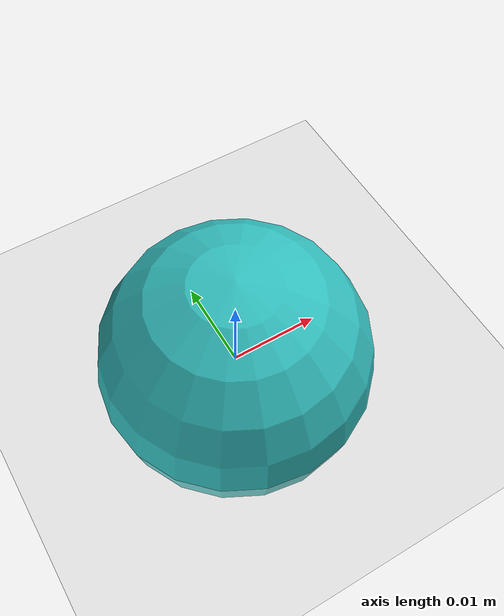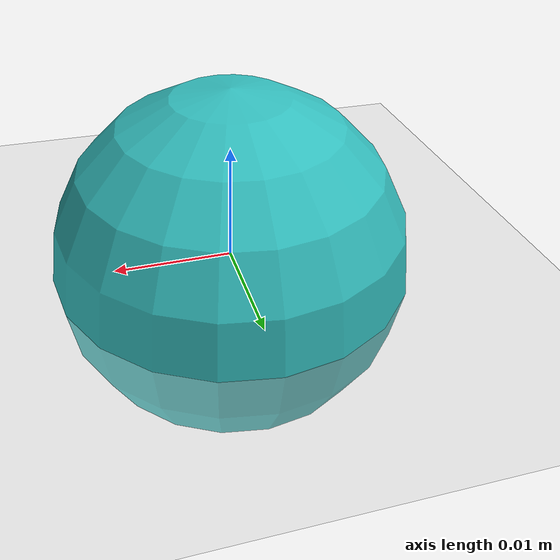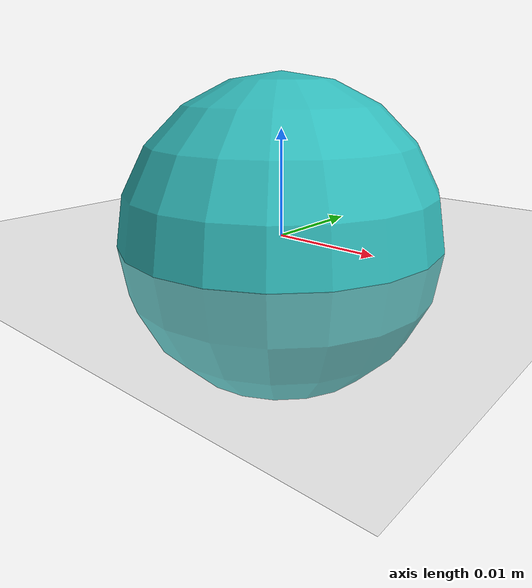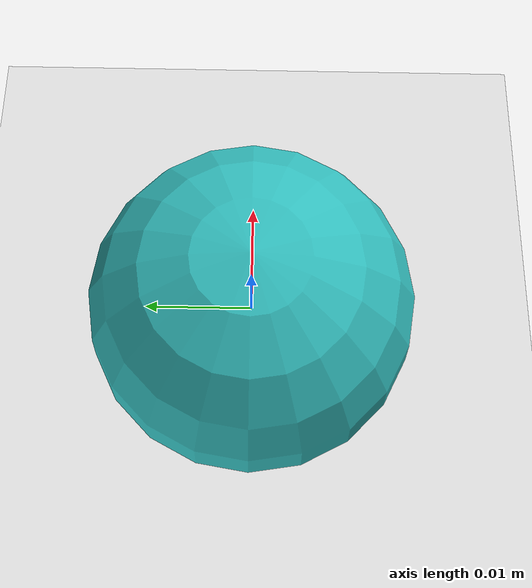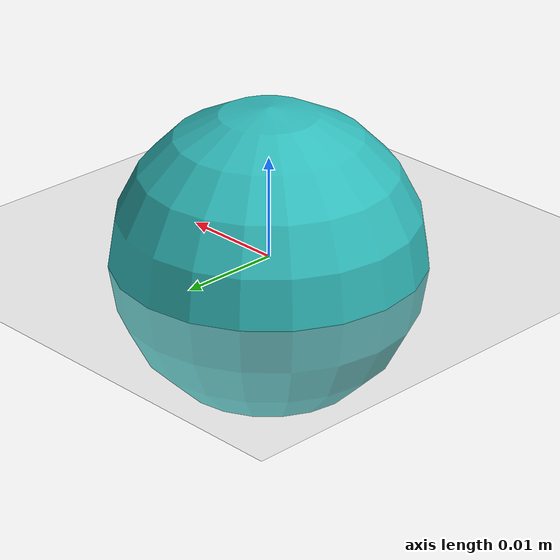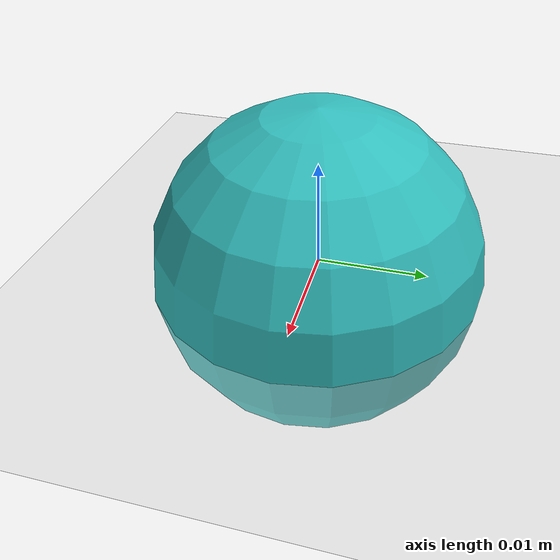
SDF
<sdf version="1.4">
 <world name="default">
  <light name="sun" type="directional">
   <pose>0 0 10 0 -0 0</pose>
   <diffuse>0.8 0.8 0.8 1</diffuse>
   <specular>0.2 0.2 0.2 1</specular>
   <attenuation>
    <range>1000</range>
    <constant>0.9</constant>
    <linear>0.01</linear>
    <quadratic>0.001</quadratic>
   </attenuation>
   <direction>-0.5 0.1 -0.9</direction>
  </light>
  <model name="ground_plane">
   <static>1</static>
   <link name="link">
    <collision name="collision">
     <geometry><plane><normal>0 0 1</normal><size>100 100</size></plane></geometry>
     <surface><friction><ode><mu>100</mu><mu2>50</mu2></ode></friction></surface>
    </collision>
    <visual name="visual">
     <cast_shadows>0</cast_shadows>
     <geometry><plane><normal>0 0 1</normal><size>100 100</size></plane></geometry>
     <material>
      <script><uri>file://media/materials/scripts/gazebo.material</uri><name>Gazebo/Grey</name></script>
     </material>
    </visual>
    <velocity_decay><linear>0</linear><angular>0</angular></velocity_decay>
   </link>
  </model>
  <physics type="ode">
   <max_step_size>0.001</max_step_size>
   <real_time_factor>1</real_time_factor>
   <real_time_update_rate>1000</real_time_update_rate>
   <gravity>0 0 -9.8</gravity>
  </physics>
  <scene><ambient>0.4 0.4 0.4 1</ambient><background>0.7 0.7 0.7 1</background><shadows>1</shadows></scene>
  <spherical_coordinates>
   <surface_model>EARTH_WGS84</surface_model>
   <latitude_deg>0</latitude_deg>
   <longitude_deg>0</longitude_deg>
   <elevation>0</elevation>
   <heading_deg>0</heading_deg>
  </spherical_coordinates>
  <include><uri>model://particle_sphere</uri><name>particle_sphere1</name></include>
  <include><uri>model://particle_sphere</uri><name>particle_sphere2</name></include>
  <include><uri>model://particle_sphere</uri><name>particle_sphere3</name></include>
  <include><uri>model://particle_sphere</uri><name>particle_sphere4</name></include>
  <include><uri>model://particle_sphere</uri><name>particle_sphere5</name></include>
  <include><uri>model://particle_sphere</uri><name>particle_sphere6</name></include>
  <include><uri>model://particle_sphere</uri><name>particle_sphere7</name></include>
  <include><uri>model://particle_sphere</uri><name>particle_sphere8</name></include>
  <include><uri>model://particle_sphere</uri><name>particle_sphere9</name></include>
  <include><uri>model://particle_sphere</uri><name>particle_sphere10</name></include>
  <include><uri>model://particle_sphere</uri><name>particle_sphere11</name></include>
  <include><uri>model://particle_sphere</uri><name>particle_sphere12</name></include>
  <include><uri>model://particle_sphere</uri><name>particle_sphere13</name></include>
  <include><uri>model://particle_sphere</uri><name>particle_sphere14</name></include>
  <include><uri>model://particle_sphere</uri><name>particle_sphere15</name></include>
  <include><uri>model://particle_sphere</uri><name>particle_sphere16</name></include>
  <include><uri>model://particle_sphere</uri><name>particle_sphere17</name></include>
  <include><uri>model://particle_sphere</uri><name>particle_sphere18</name></include>
  <include><uri>model://particle_sphere</uri><name>particle_sphere19</name></include>
  <include><uri>model://particle_sphere</uri><name>particle_sphere20</name></include>
  <include><uri>model://particle_sphere</uri><name>particle_sphere21</name></include>
  <include><uri>model://particle_sphere</uri><name>particle_sphere22</name></include>
  <include><uri>model://particle_sphere</uri><name>particle_sphere23</name></include>
  <include><uri>model://particle_sphere</uri><name>particle_sphere24</name></include>
  <include><uri>model://particle_sphere</uri><name>particle_sphere25</name></include>
  <include><uri>model://particle_sphere</uri><name>particle_sphere26</name></include>
  <include><uri>model://particle_sphere</uri><name>particle_sphere27</name></include>
  <include><uri>model://particle_sphere</uri><name>particle_sphere28</name></include>
  <atmosphere type="adiabatic"/>
  <scene><sky><clouds><speed>5</speed></clouds></sky></scene>
  <plugin name="particle_shooter_plugin" filename="libparticle_shooter_plugin.so">
   <reset_frequency>30.0</reset_frequency>
   <x_axis_force>0.0</x_axis_force>
   <y_axis_force>0.0</y_axis_force>
   <z_axis_force>0.2</z_axis_force>
   <x_origin>0.0</x_origin>
   <y_origin>0.0</y_origin>
   <z_origin>0.05</z_origin>
   <random_range>0.05</random_range>
  </plugin>
 </world>
</sdf>

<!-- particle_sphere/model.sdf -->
<sdf version='1.4'>
  <model name="particle_sphere">
      <static>0</static>
      <link name='link'>
        <inertial>
          <mass>0.25</mass>
          <inertia>
            <ixx>9e-05</ixx>
            <ixy>0.000000</ixy>
            <ixz>0.000000</ixz>
            <iyy>9e-05</iyy>
            <iyz>0.000000</iyz>
            <izz>9e-05</izz>
          </inertia>
        </inertial>
        <collision name='collision'>
          <geometry>
            <sphere>
              <radius>0.015</radius>
            </sphere>
          </geometry>
          <surface>
            <friction>
              <ode>
                <mu>30.0</mu>
                <mu2>30.0</mu2>
              </ode>
            </friction>
            <contact>
              <ode>
                <kp>1000000.0</kp>
                <kd>100.0</kd>
                <max_vel>1.0</max_vel>
                <min_depth>0.002</min_depth>
              </ode>
            </contact>
          </surface>
        </collision>
        <visual name='visual'>
          <geometry>
            <sphere>
              <radius>0.015</radius>
            </sphere>
          </geometry>
          <material>
            <script>
              <uri>file://media/materials/scripts/gazebo.material</uri>
              <name>Gazebo/Turquoise </name>
            </script>
          </material>
        </visual>
        <velocity_decay>
          <linear>0.000000</linear>
          <angular>0.000000</angular>
        </velocity_decay>
        <self_collide>0</self_collide>
        <kinematic>0</kinematic>
        <gravity>0</gravity>
      </link>
  </model>
</sdf>
